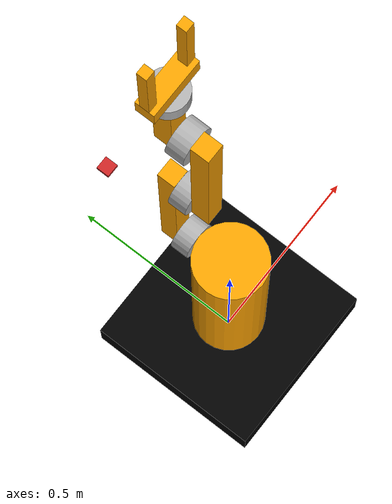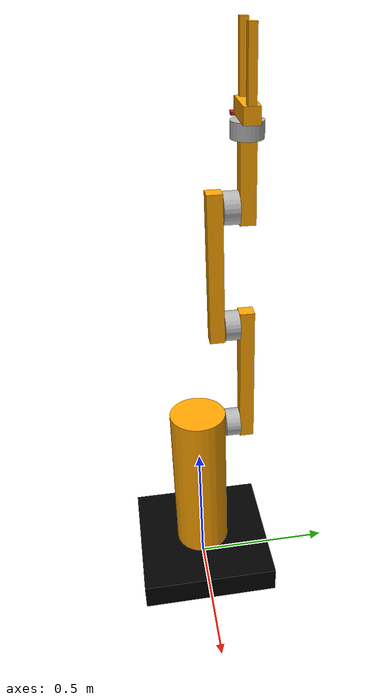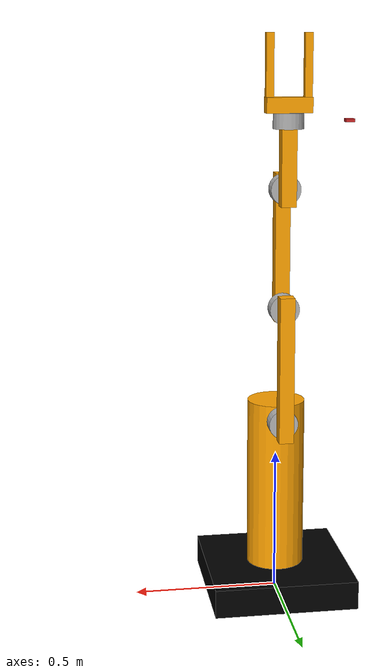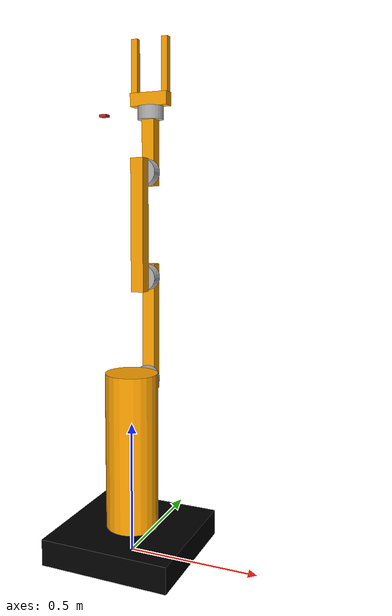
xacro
<robot name="roboarm" xmlns:xacro="http://www.ros.org/wiki/xacro">

    <gazebo>
        <plugin name="gazebo_ros_api" filename="libgazebo_ros_api.so"/>
    </gazebo>

    <!-- Include Gazebo Parameters -->
    <xacro:include filename="$(find roboarm_description)/urdf/roboarm_gazebo.xacro" />

    <!-- Include ros2_control Plugins -->
    <xacro:include filename="$(find roboarm_description)/urdf/roboarm_ros2_control.xacro" />

    <!-- Include camera -->
    <xacro:include filename="$(find roboarm_description)/urdf/camera.xacro" />

    <!-- Xacro properties -->
    <xacro:property name="base_length" value="0.5" />
    <xacro:property name="base_height" value="0.1" />
    <xacro:property name="body_radius" value="0.1" />
    <xacro:property name="body_length" value="0.6" />
    <xacro:property name="root_radius" value="0.05" />
    <xacro:property name="root_length" value="0.05" />
    <xacro:property name="root_mass" value="0.001" />
    <xacro:property name="arm_width" value="0.05" />
    <xacro:property name="arm_length" value="0.5" />
    <xacro:property name="arm_mass" value="0.01" />
    <xacro:property name="damping" value="0.0" />
    <xacro:property name="friction" value="0.0" />
    <!-- Xacro macros -->
    <xacro:macro name="cylinder_link" params="name r l ox oy oz oroll opitch oyaw mass material">
        <link name="${name}_link">
            <visual>
                <geometry>
                    <cylinder radius="${r}" length="${l}" />
                </geometry>
                <origin xyz="${ox} ${oy} ${oz}" rpy="${oroll} ${opitch} ${oyaw}" />
                <material name="${material}" />
            </visual>
            <xacro:cylinder_inertia m="${mass}" r="${r}" l="${l}" o_xyz="${ox} ${oy} ${oz}" o_rpy="${oroll} ${opitch} ${oyaw}" />
            <collision>
                <geometry>
                    <cylinder radius="${r}" length="${l}" />
                </geometry>
                <origin xyz="${ox} ${oy} ${oz}" rpy="${oroll} ${opitch} ${oyaw}" />
            </collision>
        </link>
    </xacro:macro>
    <xacro:macro name="box_link" params="name x y z ox oy oz mass material">
        <link name="${name}_link">
            <visual>
                <geometry>
                    <box size="${x} ${y} ${z}" />
                </geometry>
                <origin xyz="${ox} ${oy} ${oz}" rpy="0 0 0" />
                <material name="${material}" />
            </visual>
            <xacro:box_inertia m="10.0" x="${x}" y="${y}" z="${z}" o_xyz="${ox} ${oy} ${oz}" o_rpy="0 0 0" />
            <collision>
                <geometry>
                    <box size="${x} ${y} ${z}" />
                </geometry>
                <origin xyz="${ox} ${oy} ${oz}" rpy="0 0 0" />
            </collision>
        </link>
    </xacro:macro>
    <xacro:macro name="finger_link" params="name x y z ox oy oz mass material">
        <link name="${name}_link">
            <visual>
                <geometry>
                    <box size="${x} ${y} ${z}" />
                </geometry>
                <origin xyz="${ox} ${oy} ${oz}" rpy="0 0 0" />
                <material name="${material}" />
            </visual>
            <xacro:box_inertia m="10.0" x="${x}" y="${y}" z="${z}" o_xyz="${ox} ${oy} ${oz}" o_rpy="0 0 0" />
            <collision>
                <geometry>
                    <box size="${x} ${y} ${z}" />
                </geometry>
                <surface>
                    <friction>
                        <ode>
                        <!-- Основные коэффициенты трения -->
                        <mu>1.2</mu>    <!-- Статическое трение (увеличьте для лучшего захвата) -->
                        <mu2>1.0</mu2>  <!-- Динамическое трение -->
                        </ode>
                    </friction>
                </surface>
                <origin xyz="${ox} ${oy} ${oz}" rpy="0 0 0" />
            </collision>
        </link>
    </xacro:macro>
    <xacro:macro name="box_inertia" params="m x y z o_xyz o_rpy">
        <inertial>
        <mass value="${m}" />
        <origin xyz="${o_xyz}" rpy="${o_rpy}" />
        <inertia ixx="${(m/12) * (z*z + y*y)}" ixy="0" ixz="0"
                 iyy="${(m/12) * (x*x + z*z)}" iyz="0"
                 izz="${(m/12) * (x*x + y*y)}" />
        </inertial>
    </xacro:macro>
    <xacro:macro name="cylinder_inertia" params="m r l o_xyz o_rpy">
        <inertial>
            <mass value="${m}" />
            <origin xyz="${o_xyz}" rpy="${o_rpy}" />
            <inertia ixx="${(m/12) * (3*r*r + l*l)}" ixy="0" ixz="0"
                     iyy="${(m/12) * (3*r*r + l*l)}" iyz="0"
                     izz="${(m/2) * (r*r)}" />
        </inertial>
    </xacro:macro>
    <!-- Materials -->
    <material name="black">
        <color rgba="0 0 0 1" />
    </material>
    <material name="orange">
        <color rgba="1 0.64 0 1" />
    </material>
    <material name="gray">
        <color rgba="0.7 0.7 0.7 1" />
    </material>

    <!-- Links -->
    <link name="world"/>
    <!-- Making base_link -->
    <xacro:box_link name="base" x="${base_length}" y="${base_length}" z="${base_height}" ox="0" oy="0" oz="${base_height  / 2}" mass="10" material="black" />
    <!-- Making body_link -->
    <xacro:cylinder_link name="body" r="${body_radius}" l="${body_length}" ox="0" oy="0" oz="${body_length / 2}" oroll="0" opitch="0" oyaw="0" mass="5.0" material="orange" />
    <!-- Making root1_link -->
    <xacro:cylinder_link name="root1" r="${root_radius}" l="${root_length}" ox="0" oy="${root_length / 2}" oz="0" oroll="${pi / 2}" opitch="0" oyaw="0" mass="${root_mass}" material="gray" />
    <!-- Making shoulder link -->
    <xacro:box_link name="shoulder" x="${arm_width}" y="${arm_width}" z="${arm_length}" ox="0" oy="${arm_width / 2}" oz="${(arm_length / 2) - root_radius}" mass="${arm_mass}" material="orange" />
    <!-- Making root2_link -->
    <xacro:cylinder_link name="root2" r="${root_radius}" l="${root_length}" ox="0" oy="${-root_length / 2}" oz="0" oroll="${pi / 2}" opitch="0" oyaw="0" mass="${root_mass}" material="gray" />
    <!-- Making forearm_link -->
    <xacro:box_link name="forearm" x="${arm_width}" y="${arm_width}" z="${arm_length}" ox="0" oy="${-arm_width / 2}" oz="${(arm_length / 2) - root_radius}" mass="${arm_mass}" material="orange" />
    <!-- Making root3_link -->
    <xacro:cylinder_link name="root3" r="${root_radius}" l="${root_length}" ox="0" oy="${root_length / 2}" oz="0" oroll="${pi / 2}" opitch="0" oyaw="0" mass="${root_mass}" material="gray" />
    <!-- Making wrist_link -->
    <xacro:box_link name="wrist" x="${arm_width}" y="${arm_width}" z="${arm_length / 2}" ox="0" oy="${arm_width / 2}" oz="${(arm_length / 4) - root_radius}" mass="${arm_mass}" material="orange" />
    <!-- Making root4_link -->
    <xacro:cylinder_link name="root4" r="${root_radius}" l="${root_length}" ox="0" oy="0" oz="${root_length / 2}" oroll="0" opitch="0" oyaw="0" mass="${root_mass}" material="gray" />
    <!-- Making palm link -->
    <xacro:box_link name="palm" x="${arm_width * 3}" y="${arm_width}" z="${arm_width}" ox="0" oy="0" oz="${arm_width / 2}" mass="${arm_mass}" material="orange" />
    <!-- Making left_finger_link -->
    <xacro:finger_link name="left_finger" x="${arm_width * 0.5}" y="${arm_width * 0.5}" z="${arm_width * 4}" ox="0" oy="0" oz="${arm_width * 4 / 2}" mass="0.001" material="orange" />
    <!-- Making right_finger_link -->
    <xacro:finger_link name="right_finger" x="${arm_width * 0.5}" y="${arm_width * 0.5}" z="${arm_width * 4}" ox="0" oy="0" oz="${arm_width * 4 / 2}" mass="0.001" material="orange" />

    <!-- Joints -->
    <joint name="world_base_joint" type="fixed">
        <parent link="world" />
        <child link="base_link" />
        <origin xyz="0 0 0" rpy="0 0 0" />
    </joint>
    <joint name="base_body_joint" type="revolute">
        <parent link="base_link" />
        <child link="body_link" />
        <origin xyz="0 0 ${base_height}" rpy="0 0 0" />
        <axis xyz="0 0 1" />
        <dynamics damping="${damping}" friction="${friction}"/>
        <limit lower="${-pi}" upper="${pi}" velocity="2.0" effort="100"/>
    </joint>

    <transmission name="base_body_joint_trans">
        <type>transmission_interface/SimpleTransmission</type>
        <joint name="base_body_joint">
          <hardwareInterface>hardware_interface/PositionJointInterface</hardwareInterface>
        </joint>
        <actuator name="base_body_joint_motor">
          <hardwareInterface>hardware_interface/PositionJointInterface</hardwareInterface>
          <mechanicalReduction>1</mechanicalReduction>
        </actuator>
    </transmission>

    <joint name="body_root1_joint" type="revolute">
        <parent link="body_link" />
        <child link="root1_link" />
        <origin xyz="0 ${body_radius} ${body_length - root_radius}" rpy="0 0 0" />
        <axis xyz="0 1 0" />
        <limit lower="${-pi / 2}" upper="${pi / 2}" velocity="2.0" effort="100"/>
        <dynamics damping="${damping}" friction="${friction}"/>
    </joint>

    <transmission name="body_root1_joint_trans">
        <type>transmission_interface/SimpleTransmission</type>
        <joint name="body_root1_joint">
          <hardwareInterface>hardware_interface/PositionJointInterface</hardwareInterface>
        </joint>
        <actuator name="body_root1_joint_motor">
          <hardwareInterface>hardware_interface/PositionJointInterface</hardwareInterface>
          <mechanicalReduction>1</mechanicalReduction>
        </actuator>
    </transmission>

    <joint name="root1_shoulder_joint" type="fixed">
        <parent link="root1_link" />
        <child link="shoulder_link" />
        <origin xyz="0 ${root_length} 0" rpy="0 0 0" />
    </joint>
    <joint name="shoulder_root2_joint" type="revolute">
        <parent link="shoulder_link" />
        <child link="root2_link" />
        <origin xyz="0 0 ${arm_length - (2 * root_radius)}" rpy="0 0 0" />
        <axis xyz="0 1 0" />
        <limit lower="${-pi / 2}" upper="${pi / 2}" velocity="2.0" effort="100"/>
        <dynamics damping="${damping}" friction="${friction}"/>
    </joint>

    <transmission name="shoulder_root2_joint_trans">
        <type>transmission_interface/SimpleTransmission</type>
        <joint name="shoulder_root2_joint">
          <hardwareInterface>hardware_interface/PositionJointInterface</hardwareInterface>
        </joint>
        <actuator name="shoulder_root2_joint_motor">
          <hardwareInterface>hardware_interface/PositionJointInterface</hardwareInterface>
          <mechanicalReduction>1</mechanicalReduction>
        </actuator>
    </transmission>

    <joint name="root2_forearm_joint" type="fixed">
        <parent link="root2_link" />
        <child link="forearm_link" />
        <origin xyz="0 ${-root_length} 0" rpy="0 0 0" />
    </joint>
    <joint name="forearm_root3_joint" type="revolute">
        <parent link="forearm_link" />
        <child link="root3_link" />
        <origin xyz="0 0 ${arm_length - (2 * root_radius)}" rpy="0 0 0" />
        <axis xyz="0 1 0" />
        <limit lower="${-pi / 2}" upper="${pi / 2}" velocity="2.0" effort="100"/>
        <dynamics damping="${damping}" friction="${friction}"/>
    </joint>

    <transmission name="forearm_root3_joint_trans">
        <type>transmission_interface/SimpleTransmission</type>
        <joint name="forearm_root3_joint">
          <hardwareInterface>hardware_interface/PositionJointInterface</hardwareInterface>
        </joint>
        <actuator name="forearm_root3_joint_motor">
          <hardwareInterface>hardware_interface/PositionJointInterface</hardwareInterface>
          <mechanicalReduction>1</mechanicalReduction>
        </actuator>
    </transmission>

    <joint name="root3_wrist_joint" type="fixed">
        <parent link="root3_link" />
        <child link="wrist_link" />
        <origin xyz="0 ${root_length} 0" rpy="0 0 0" />
    </joint>
    <joint name="wrist_root4_joint" type="revolute">
        <parent link="wrist_link" />
        <child link="root4_link" />
        <origin xyz="0 ${arm_width / 2} ${(arm_length * 0.5) - root_radius}" rpy="0 0 0" />
        <axis xyz="0 0 1" />
        <limit lower="${-pi / 2}" upper="${pi / 2}" velocity="2.0" effort="100"/>
        <dynamics damping="${damping}" friction="${friction}"/>
    </joint>

    <transmission name="wrist_root4_joint_trans">
        <type>transmission_interface/SimpleTransmission</type>
        <joint name="wrist_root4_joint">
          <hardwareInterface>hardware_interface/PositionJointInterface</hardwareInterface>
        </joint>
        <actuator name="wrist_root4_joint_motor">
          <hardwareInterface>hardware_interface/PositionJointInterface</hardwareInterface>
          <mechanicalReduction>1</mechanicalReduction>
        </actuator>
    </transmission>

    <joint name="root4_palm_joint" type="fixed">
        <parent link="root4_link" />
        <child link="palm_link" />
        <origin xyz="0 0 ${root_length}" rpy="0 0 0" />
    </joint>
    <joint name="palm_left_finger_joint" type="prismatic">
        <parent link="palm_link" />
        <child link="left_finger_link" />
        <origin xyz="${(-arm_width * 3 / 2) + (arm_width * 0.5 / 2)} 0 ${arm_width}" rpy="0 0 0" />
        <axis xyz="1 0 0" />
        <limit lower="0" upper="${(arm_width * 3 / 2) - (arm_width * 0.5)}" velocity="2.0" effort="100"/>
    </joint>

    <transmission name="palm_left_finger_joint_trans">
        <type>transmission_interface/SimpleTransmission</type>
        <joint name="palm_left_finger_joint">
          <hardwareInterface>hardware_interface/PositionJointInterface</hardwareInterface>
        </joint>
        <actuator name="palm_left_finger_joint_motor">
          <hardwareInterface>hardware_interface/PositionJointInterface</hardwareInterface>
          <mechanicalReduction>1</mechanicalReduction>
        </actuator>
    </transmission>

    <joint name="palm_right_finger_joint" type="prismatic">
        <parent link="palm_link" />
        <child link="right_finger_link" />
        <origin xyz="${(arm_width * 3 / 2) - (arm_width * 0.5 / 2)} 0 ${arm_width}" rpy="0 0 0" />
        <axis xyz="1 0 0" />
        <limit lower="${-(arm_width * 3 / 2) + (arm_width * 0.5)}" upper="0" velocity="2.0" effort="20"/>
        <mimic joint="palm_left_finger_joint" multiplier="-1" />
    </joint>
</robot>

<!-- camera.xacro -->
<robot xmlns:xacro="http://www.ros.org/wiki/xacro" name="roboarm">

    <joint name="camera_joint" type="fixed">
        <parent link="wrist_link"/>
        <child link="camera_link"/>
        <origin xyz="-0.2 0.025 0.225" rpy="0 ${-pi/2} 0"/>
    </joint>

    <link name="camera_link">
        <visual>
            <geometry>
                <box size="0.010 0.03 0.03"/>
            </geometry>
            <material name="red"/>
        </visual>
    </link>

    <joint name="camera_optical_joint" type="fixed">
        <parent link="camera_link"/>
        <child link="camera_link_optical"/>
        <origin xyz="0 0 0" rpy="${-pi/2} 0 ${-pi/2}"/>
    </joint>

    <link name="camera_link_optical"/>

    <gazebo reference="camera_link">
        <material>Gazebo/Red</material>
        <sensor name="camera" type="camera">
            <pose>0 0 0 0 0 0</pose>
            <visualize>true</visualize>
            <update_rate>30</update_rate>
            <camera>
                <horizontal_fov>1.089</horizontal_fov>
                <image>
                    <format>R8G8B8</format>
                    <width>640</width>
                    <height>480</height>
                </image>
                <clip>
                    <near>0.05</near>
                    <far>8.0</far>
                </clip>
            </camera>
            <!-- libgazebo_ros_camera_system.so dont create ros topics -->
            <plugin name="camera_controller" filename="libgazebo_ros_camera.so">
                <ros>
                    <namespace>/roboeye</namespace>
                </ros>
                <frame_name>camera_link_optical</frame_name>
                <camera_name>camera</camera_name>
                <image_topic_name>image_raw</image_topic_name>
                <camera_info_topic_name>camera_info</camera_info_topic_name>
            </plugin>
        </sensor>
    </gazebo>

</robot>
